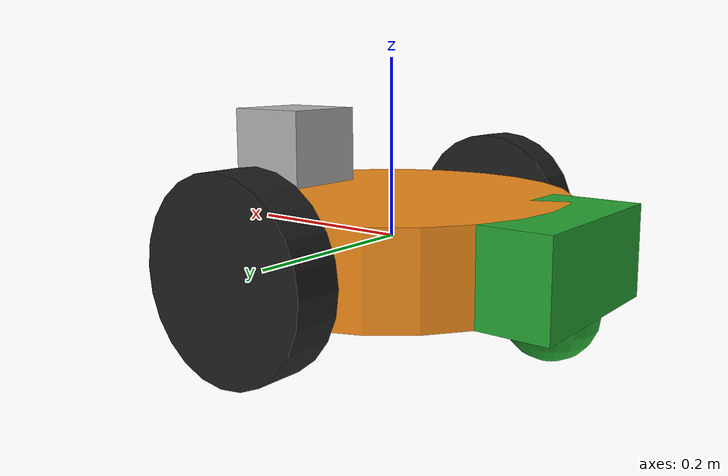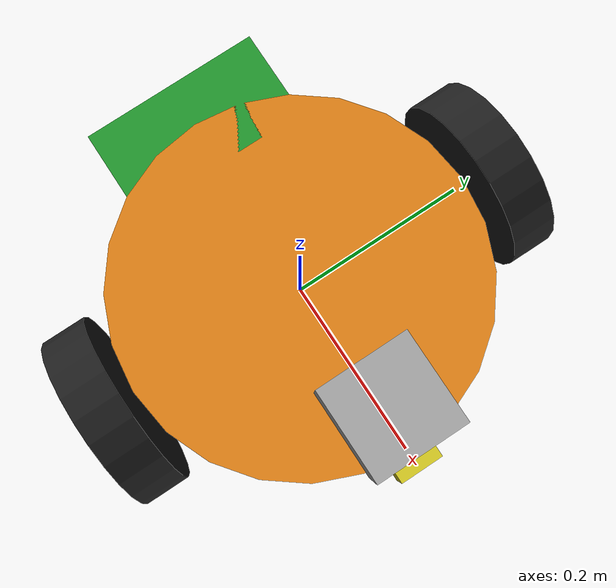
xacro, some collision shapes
<?xml version='1.0'?>

<robot name="my_robot" xmlns:xacro="http://www.ros.org/wiki/xacro">

  <xacro:include filename="$(find my_robot)/urdf/my_robot.gazebo" />

  <link name="robot_footprint"></link>

  <joint name="robot_footprint_joint" type="fixed">
    <origin xyz="0 0 0" rpy="0 0 0" />
    <parent link="robot_footprint"/>
    <child link="chassis" />
  </joint>

  <link name='chassis'>
    <pose>0 0 0.1 0 0 0</pose>

    <inertial>
      <mass value="15.0"/>
      <origin xyz="0.0 0 0" rpy=" 0 0 0"/>
      <inertia
          ixx="0.1" ixy="0" ixz="0"
          iyy="0.1" iyz="0"
          izz="0.1"
      />
    </inertial>

    <collision name='chassis_collision'>
      <origin xyz="0 0 0" rpy=" 0 0 0"/>
      <geometry>
        <cylinder radius="0.2" length="0.1"/>
      </geometry>
    </collision>

    <visual name='chassis_visual'>
      <origin xyz="0 0 0" rpy=" 0 0 0"/>
      <geometry>
        <cylinder radius="0.2" length="0.1"/>
      </geometry>
    </visual>

    <collision name='front_caster_collision'>
      <origin xyz="0.1 0 -0.05" rpy=" 0 0 0"/>
      <geometry>
        <sphere radius="0.0499"/>
      </geometry>
    </collision>

    <visual name='front_caster_visual'>
      <origin xyz="0.1 0 -0.05" rpy=" 0 0 0"/>
      <geometry>
        <sphere radius="0.05"/>
      </geometry>
    </visual>

  </link>

  <link name='battery'>
    <visual name='battery_visual'>
      <origin xyz="-0.2 0 0" rpy=" 0 0 0"/>
      <geometry>
        <box size="0.1 0.2 0.1"/>
      </geometry>
    </visual>

    <collision name='battery_collision'>
      <origin xyz="-0.2 0 0" rpy=" 0 0 0"/>
      <geometry>
        <box size="0.1 0.2 0.1"/>
      </geometry>
    </collision>

    <collision name='back_caster_collision'>
      <origin xyz="-0.2 0 -0.05" rpy=" 0 0 0"/>
      <geometry>
        <sphere radius="0.0499"/>
      </geometry>
    </collision>

    <visual name='back_caster_visual'>
      <origin xyz="-0.2 0 -0.05" rpy=" 0 0 0"/>
      <geometry>
        <sphere radius="0.05"/>
      </geometry>
    </visual>

  </link>

  <link name='left_wheel'>
    <visual name='left_wheel_visual'>
    <origin xyz="0 0 0" rpy="0 1.5707 1.5707"/>
    <geometry>
    <cylinder radius="0.1" length="0.05"/>
    </geometry>
    </visual>

  <inertial>
  <mass value="5.0"/>
      <origin xyz="0.0 0 0" rpy="0 1.5707 1.5707"/>
      <inertia
          ixx="0.1" ixy="0" ixz="0"
          iyy="0.1" iyz="0"
          izz="0.1"
      />
    </inertial>

  <collision name='left_wheel_collision'>
      <origin xyz="0.0 0 0" rpy=" 0 1.5707 1.5707"/>
      <geometry>
  <cylinder radius="0.1" length="0.05"/>
  </geometry>
    </collision>

  </link>

  <link name='right_wheel'>
  <visual name='right_wheel_visual'>
  <origin xyz="0 0 0" rpy="0 1.5707 1.5707"/>
  <geometry>
  <cylinder radius="0.1" length="0.05"/>
  </geometry>
  </visual>

  <inertial>
  <mass value="5.0"/>
      <origin xyz="0.0 0 0" rpy="0 1.5707 1.5707"/>
      <inertia
          ixx="0.1" ixy="0" ixz="0"
          iyy="0.1" iyz="0"
          izz="0.1"
      />
    </inertial>

  <collision name='right_wheel_collision'>
      <origin xyz="0.0 0 0" rpy=" 0 1.5707 1.5707"/>
      <geometry>
  <cylinder radius="0.1" length="0.05"/>
  </geometry>
    </collision>

  </link>

  <joint type="continuous" name="left_wheel_hinge">
    <origin xyz="0 0.23 0" rpy="0 0 0"/>
    <child link="left_wheel"/>
    <parent link="chassis"/>
    <axis xyz="0 1 0" rpy="0 0 0"/>
    <limit effort="10000" velocity="1000"/>
    <dynamics damping="1.0" friction="1.0"/>
  </joint>

  <joint type="continuous" name="right_wheel_hinge">
    <origin xyz="0 -0.23 0" rpy="0 0 0"/>
    <child link="right_wheel"/>
    <parent link="chassis"/>
    <axis xyz="0 1 0" rpy="0 0 0"/>
    <limit effort="10000" velocity="1000"/>
    <dynamics damping="1.0" friction="1.0"/>
  </joint>

  <link name='camera'>
  <visual name='camera_visual'>
  <origin xyz="0 0 0" rpy="0 0 0"/>
  <geometry>
  <box size="0.05 0.05 0.05"/>
  </geometry>
  </visual>

  <inertial>
  <mass value="0.1"/>
      <origin xyz="0.0 0 0" rpy="0 0 0"/>
      <inertia
          ixx="1e-6" ixy="0" ixz="0"
          iyy="1e-6" iyz="0"
          izz="1e-6"
      />
    </inertial>

  <collision name='camera_collision'>
      <origin xyz="0.0 0 0" rpy="0 0 0"/>
      <geometry>
  <box size="0.05 0.05 0.05"/>
  </geometry>
    </collision>

  </link>

  <joint type="fixed" name="battery_joint">
    <origin xyz="-0.0 0 0" rpy="0 0 0"/>
    <child link="battery"/>
    <parent link="chassis"/>
    <axis xyz="1 0 0" rpy="0 0 0"/>
  </joint>

  <joint type="fixed" name="camera_joint">
    <origin xyz="0.2 0 0" rpy="0 0 0"/>
    <child link="camera"/>
    <parent link="chassis"/>
    <axis xyz="0 1 0" rpy="0 0 0"/>
  </joint>

  <joint name="camera_optical_joint" type="fixed">
    <origin xyz="0 0 0" rpy="-1.5707 0 -1.5707"/>
    <parent link="camera"/>
    <child link="camera_link_optical"/>
  </joint>

  <link name="camera_link_optical">
  </link>

  <link name='hokuyo'>
  <visual name='hokuyo_visual'>
  <origin xyz="0 0 0" rpy="0 0 0"/>
  <geometry>
  <mesh filename="package://my_robot/meshes/hokuyo.dae"/>
  </geometry>
  </visual>

  <inertial>
  <mass value="1e-5"/>
      <origin xyz="0.0 0 0" rpy="0 0 0"/>
      <inertia
          ixx="1e-6" ixy="0" ixz="0"
          iyy="1e-6" iyz="0"
          izz="1e-6"
      />
    </inertial>

  <collision name='hokuyo_collision'>
      <origin xyz="0.0 0 0" rpy="0 0 0"/>
      <geometry>
  <box size="0.1 0.1 0.1"/>
  </geometry>
    </collision>
  </link>

  <joint type="fixed" name="hokuyo_joint">
    <origin xyz="0.15 0 0.09" rpy="0 0 0"/>
    <child link="hokuyo"/>
    <parent link="chassis"/>
    <axis xyz="0 1 1" rpy="0 0 0"/>
  </joint>

  <gazebo reference="chassis">
    <material>Gazebo/Orange</material>
  </gazebo>

  <gazebo reference="left_wheel">
    <material>Gazebo/Black</material>
  </gazebo>

  <gazebo reference="right_wheel">
    <material>Gazebo/Black</material>
  </gazebo>

  <gazebo reference="camera">
    <material>Gazebo/Yellow</material>
  </gazebo>

  <gazebo reference="battery">
    <material>Gazebo/Green</material>
  </gazebo>

</robot>
